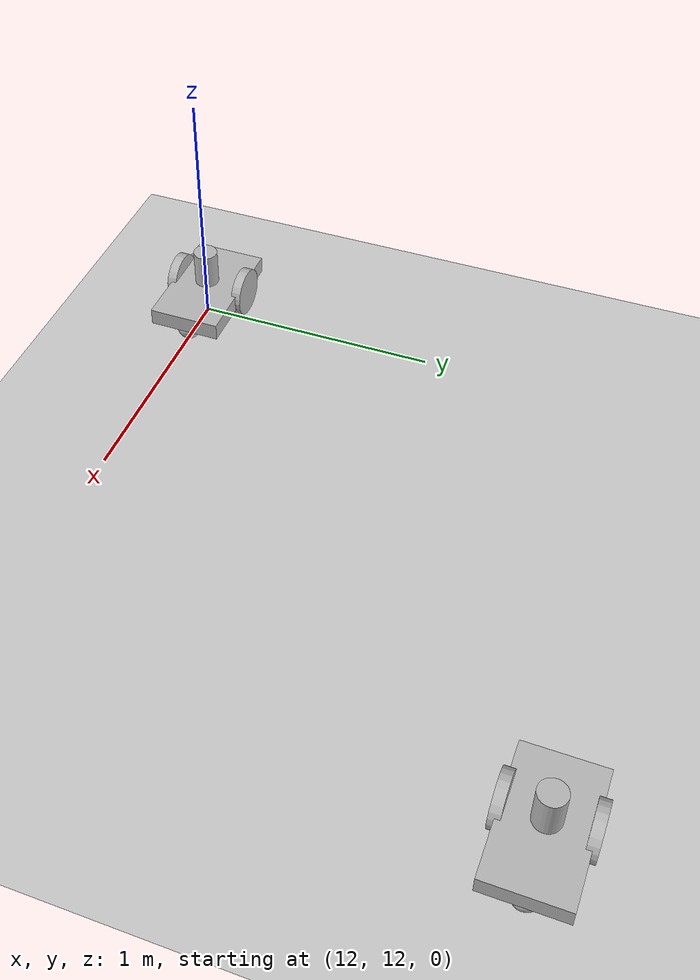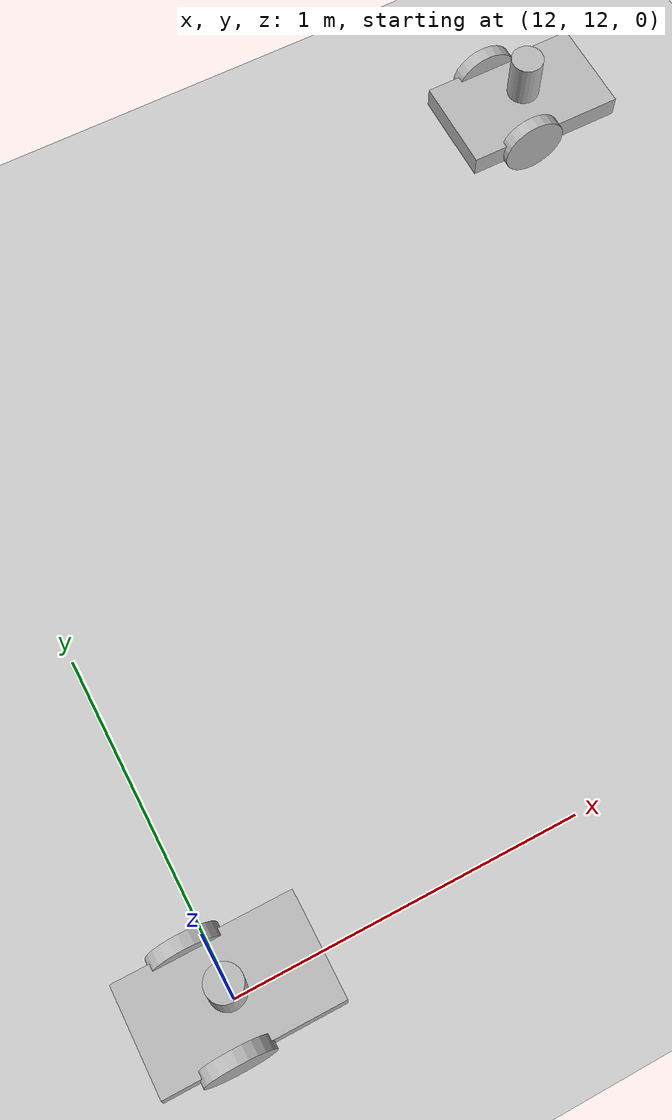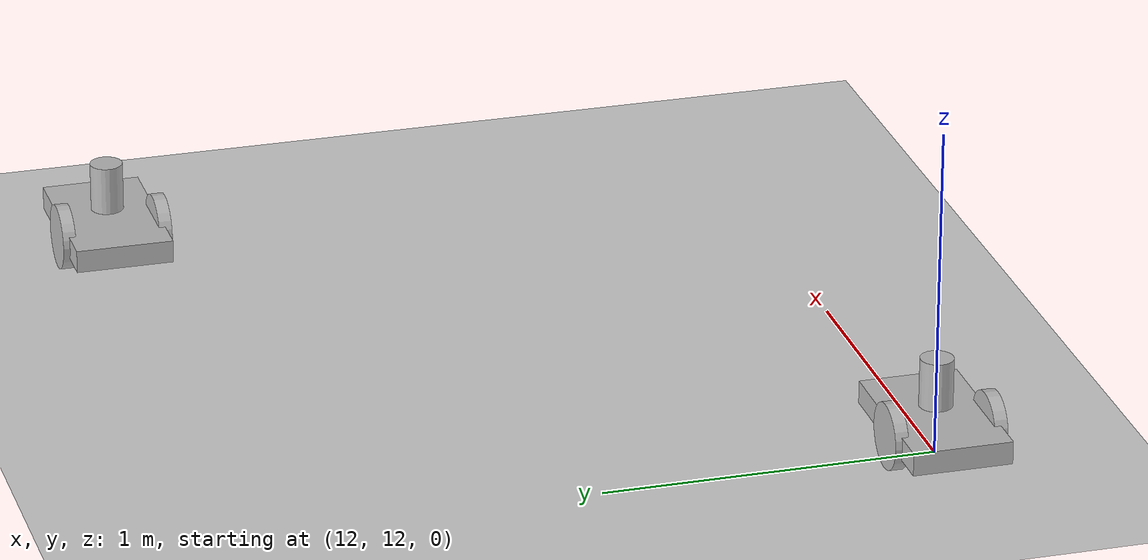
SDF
<sdf version="1.6">
 <world name="default">
  <model name="ground_plane">
   <static>1</static>
   <link name="link">
    <collision name="collision">
     <geometry><plane><normal>0 0 1</normal><size>100 100</size></plane></geometry>
     <surface>
      <contact><collide_bitmask>65535</collide_bitmask></contact>
      <friction><ode><mu>100</mu><mu2>50</mu2></ode></friction>
     </surface>
    </collision>
    <visual name="visual">
     <cast_shadows>0</cast_shadows>
     <geometry><plane><normal>0 0 1</normal><size>100 100</size></plane></geometry>
     <material>
      <script><uri>file://media/materials/scripts/gazebo.material</uri><name>Gazebo/Grey</name></script>
     </material>
    </visual>
   </link>
  </model>
  <model name="robot_9">
   <link name="robot/link_chassis">
    <inertial>
     <pose>0 0 0.021667 0 -0 0</pose>
     <mass>6</mass>
     <inertia>
      <ixx>0.0931667</ixx>
      <ixy>0</ixy>
      <ixz>0</ixz>
      <iyy>0.2265</iyy>
      <iyz>0</iyz>
      <izz>0.212417</izz>
     </inertia>
    </inertial>
    <collision name="robot/link_chassis_fixed_joint_lump__robot/collision_chassis_collision">
     <geometry><box><size>0.5 0.3 0.07</size></box></geometry>
    </collision>
    <collision name="robot/link_chassis_fixed_joint_lump__robot/caster_front_collision_collision_1">
     <pose>0.35 0 -0.05 0 -0 0</pose>
     <geometry><sphere><radius>0.05</radius></sphere></geometry>
    </collision>
    <collision name="robot/link_chassis_fixed_joint_lump__robot/sensor_laser_collision_2">
     <pose>0 0 0.13 0 -0 0</pose>
     <geometry><cylinder><length>0.15</length><radius>0.05</radius></cylinder></geometry>
    </collision>
    <visual name="robot/link_chassis_visual"><geometry><box><size>0.5 0.3 0.07</size></box></geometry></visual>
    <visual name="robot/link_chassis_fixed_joint_lump__robot/caster_front_visual_visual_1">
     <pose>0.2 0 -0.05 0 -0 0</pose>
     <geometry><sphere><radius>0.05</radius></sphere></geometry>
    </visual>
    <visual name="robot/link_chassis_fixed_joint_lump__robot/sensor_laser_visual_2">
     <pose>0 0 0.13 0 -0 0</pose>
     <geometry><cylinder><length>0.15</length><radius>0.05</radius></cylinder></geometry>
     <material><script><uri>__default__</uri><name>__default__</name></script></material>
    </visual>
    <sensor name="head_hokuyo_sensor" type="ray">
     <visualize>0</visualize>
     <update_rate>20</update_rate>
     <ray>
      <scan>
       <horizontal>
        <samples>720</samples>
        <resolution>1</resolution>
        <min_angle>-1.5707</min_angle>
        <max_angle>1.5707</max_angle>
       </horizontal>
       <vertical><samples>1</samples><min_angle>0</min_angle><max_angle>0</max_angle></vertical>
      </scan>
      <range><min>0.2</min><max>2</max><resolution>0.01</resolution></range>
      <noise><type>gaussian</type><mean>0</mean><stddev>0.01</stddev></noise>
     </ray>
     <plugin name="gazebo_ros_head_hokuyo_controller" filename="libgazebo_ros_laser.so">
      <topicName>laser_scan</topicName>
      <frameName>sensor_laser</frameName>
      <robotNamespace>/robot_9/</robotNamespace>
     </plugin>
     <pose>0 0 0.13 0 -0 0</pose>
    </sensor>
   </link>
   <link name="robot/link_left_wheel">
    <pose>-0.05 -0.15 0 0 -0 0</pose>
    <inertial>
     <pose>0 0 0 -0 1.5707 1.5707</pose>
     <mass>0.2</mass>
     <inertia>
      <ixx>0.000526667</ixx>
      <ixy>0</ixy>
      <ixz>0</ixz>
      <iyy>0.000526667</iyy>
      <iyz>0</iyz>
      <izz>0.001</izz>
     </inertia>
    </inertial>
    <collision name="robot/link_left_wheel_collision_collision">
     <pose>0 0 0 3.14159 1.57079 -1.57089</pose>
     <geometry><cylinder><length>0.04</length><radius>0.1</radius></cylinder></geometry>
    </collision>
    <visual name="robot/link_left_wheel_visual_visual">
     <pose>0 0 0 3.14159 1.57079 -1.57089</pose>
     <geometry><cylinder><length>0.04</length><radius>0.1</radius></cylinder></geometry>
    </visual>
   </link>
   <joint name="robot/joint_left_wheel" type="revolute">
    <child>robot/link_left_wheel</child>
    <parent>robot/link_chassis</parent>
    <axis>
     <xyz>0 1 0</xyz>
     <limit><lower>-1e+16</lower><upper>1e+16</upper></limit>
     <dynamics><spring_reference>0</spring_reference><spring_stiffness>0</spring_stiffness></dynamics>
     <use_parent_model_frame>1</use_parent_model_frame>
    </axis>
   </joint>
   <link name="robot/link_right_wheel">
    <pose>-0.05 0.15 0 0 -0 0</pose>
    <inertial>
     <pose>0 0 0 -0 1.5707 1.5707</pose>
     <mass>0.2</mass>
     <inertia>
      <ixx>0.000526667</ixx>
      <ixy>0</ixy>
      <ixz>0</ixz>
      <iyy>0.000526667</iyy>
      <iyz>0</iyz>
      <izz>0.001</izz>
     </inertia>
    </inertial>
    <collision name="robot/link_right_wheel_collision_collision">
     <pose>0 0 0 3.14159 1.57079 -1.57089</pose>
     <geometry><cylinder><length>0.04</length><radius>0.1</radius></cylinder></geometry>
    </collision>
    <visual name="robot/link_right_wheel_visual_visual">
     <pose>0 0 0 3.14159 1.57079 -1.57089</pose>
     <geometry><cylinder><length>0.04</length><radius>0.1</radius></cylinder></geometry>
    </visual>
   </link>
   <joint name="robot/joint_right_wheel" type="revolute">
    <child>robot/link_right_wheel</child>
    <parent>robot/link_chassis</parent>
    <axis>
     <xyz>0 1 0</xyz>
     <limit><lower>-1e+16</lower><upper>1e+16</upper></limit>
     <dynamics><spring_reference>0</spring_reference><spring_stiffness>0</spring_stiffness></dynamics>
     <use_parent_model_frame>1</use_parent_model_frame>
    </axis>
   </joint>
   <plugin name="gazebo_ros_control" filename="libgazebo_ros_control.so">
    <robotSimType>gazebo_ros_control/DefaultRobotHWSim</robotSimType>
    <legacyModeNS>1</legacyModeNS>
    <robotNamespace>/robot_9/</robotNamespace>
   </plugin>
   <static>0</static>
   <plugin name="differential_drive_controller" filename="libgazebo_ros_diff_drive.so">
    <legacyMode>0</legacyMode>
    <alwaysOn>1</alwaysOn>
    <updateRate>20</updateRate>
    <leftJoint>robot/joint_left_wheel</leftJoint>
    <rightJoint>robot/joint_right_wheel</rightJoint>
    <wheelSeparation>0.2</wheelSeparation>
    <wheelDiameter>0.2</wheelDiameter>
    <torque>0.1</torque>
    <commandTopic>cmd_vel</commandTopic>
    <odometryTopic>odom</odometryTopic>
    <odometryFrame>odom</odometryFrame>
    <robotBaseFrame>link_chassis</robotBaseFrame>
    <robotNamespace>/robot_9/</robotNamespace>
   </plugin>
   <pose>13.9945 14.0023 0.099999 0 6e-06 -0.00293</pose>
  </model>
  <model name="robot_4">
   <link name="robot/link_chassis">
    <inertial>
     <pose>0 0 0.021667 0 -0 0</pose>
     <mass>6</mass>
     <inertia>
      <ixx>0.0931667</ixx>
      <ixy>0</ixy>
      <ixz>0</ixz>
      <iyy>0.2265</iyy>
      <iyz>0</iyz>
      <izz>0.212417</izz>
     </inertia>
    </inertial>
    <collision name="robot/link_chassis_fixed_joint_lump__robot/collision_chassis_collision">
     <geometry><box><size>0.5 0.3 0.07</size></box></geometry>
    </collision>
    <collision name="robot/link_chassis_fixed_joint_lump__robot/caster_front_collision_collision_1">
     <pose>0.35 0 -0.05 0 -0 0</pose>
     <geometry><sphere><radius>0.05</radius></sphere></geometry>
    </collision>
    <collision name="robot/link_chassis_fixed_joint_lump__robot/sensor_laser_collision_2">
     <pose>0 0 0.13 0 -0 0</pose>
     <geometry><cylinder><length>0.15</length><radius>0.05</radius></cylinder></geometry>
    </collision>
    <visual name="robot/link_chassis_visual"><geometry><box><size>0.5 0.3 0.07</size></box></geometry></visual>
    <visual name="robot/link_chassis_fixed_joint_lump__robot/caster_front_visual_visual_1">
     <pose>0.2 0 -0.05 0 -0 0</pose>
     <geometry><sphere><radius>0.05</radius></sphere></geometry>
    </visual>
    <visual name="robot/link_chassis_fixed_joint_lump__robot/sensor_laser_visual_2">
     <pose>0 0 0.13 0 -0 0</pose>
     <geometry><cylinder><length>0.15</length><radius>0.05</radius></cylinder></geometry>
     <material><script><uri>__default__</uri><name>__default__</name></script></material>
    </visual>
    <sensor name="head_hokuyo_sensor" type="ray">
     <visualize>0</visualize>
     <update_rate>20</update_rate>
     <ray>
      <scan>
       <horizontal>
        <samples>720</samples>
        <resolution>1</resolution>
        <min_angle>-1.5707</min_angle>
        <max_angle>1.5707</max_angle>
       </horizontal>
       <vertical><samples>1</samples><min_angle>0</min_angle><max_angle>0</max_angle></vertical>
      </scan>
      <range><min>0.2</min><max>2</max><resolution>0.01</resolution></range>
      <noise><type>gaussian</type><mean>0</mean><stddev>0.01</stddev></noise>
     </ray>
     <plugin name="gazebo_ros_head_hokuyo_controller" filename="libgazebo_ros_laser.so">
      <topicName>laser_scan</topicName>
      <frameName>sensor_laser</frameName>
      <robotNamespace>/robot_4/</robotNamespace>
     </plugin>
     <pose>0 0 0.13 0 -0 0</pose>
    </sensor>
   </link>
   <link name="robot/link_left_wheel">
    <pose>-0.05 -0.15 0 0 -0 0</pose>
    <inertial>
     <pose>0 0 0 -0 1.5707 1.5707</pose>
     <mass>0.2</mass>
     <inertia>
      <ixx>0.000526667</ixx>
      <ixy>0</ixy>
      <ixz>0</ixz>
      <iyy>0.000526667</iyy>
      <iyz>0</iyz>
      <izz>0.001</izz>
     </inertia>
    </inertial>
    <collision name="robot/link_left_wheel_collision_collision">
     <pose>0 0 0 3.14159 1.57079 -1.57089</pose>
     <geometry><cylinder><length>0.04</length><radius>0.1</radius></cylinder></geometry>
    </collision>
    <visual name="robot/link_left_wheel_visual_visual">
     <pose>0 0 0 3.14159 1.57079 -1.57089</pose>
     <geometry><cylinder><length>0.04</length><radius>0.1</radius></cylinder></geometry>
    </visual>
   </link>
   <joint name="robot/joint_left_wheel" type="revolute">
    <child>robot/link_left_wheel</child>
    <parent>robot/link_chassis</parent>
    <axis>
     <xyz>0 1 0</xyz>
     <limit><lower>-1e+16</lower><upper>1e+16</upper></limit>
     <dynamics><spring_reference>0</spring_reference><spring_stiffness>0</spring_stiffness></dynamics>
     <use_parent_model_frame>1</use_parent_model_frame>
    </axis>
   </joint>
   <link name="robot/link_right_wheel">
    <pose>-0.05 0.15 0 0 -0 0</pose>
    <inertial>
     <pose>0 0 0 -0 1.5707 1.5707</pose>
     <mass>0.2</mass>
     <inertia>
      <ixx>0.000526667</ixx>
      <ixy>0</ixy>
      <ixz>0</ixz>
      <iyy>0.000526667</iyy>
      <iyz>0</iyz>
      <izz>0.001</izz>
     </inertia>
    </inertial>
    <collision name="robot/link_right_wheel_collision_collision">
     <pose>0 0 0 3.14159 1.57079 -1.57089</pose>
     <geometry><cylinder><length>0.04</length><radius>0.1</radius></cylinder></geometry>
    </collision>
    <visual name="robot/link_right_wheel_visual_visual">
     <pose>0 0 0 3.14159 1.57079 -1.57089</pose>
     <geometry><cylinder><length>0.04</length><radius>0.1</radius></cylinder></geometry>
    </visual>
   </link>
   <joint name="robot/joint_right_wheel" type="revolute">
    <child>robot/link_right_wheel</child>
    <parent>robot/link_chassis</parent>
    <axis>
     <xyz>0 1 0</xyz>
     <limit><lower>-1e+16</lower><upper>1e+16</upper></limit>
     <dynamics><spring_reference>0</spring_reference><spring_stiffness>0</spring_stiffness></dynamics>
     <use_parent_model_frame>1</use_parent_model_frame>
    </axis>
   </joint>
   <plugin name="gazebo_ros_control" filename="libgazebo_ros_control.so">
    <robotSimType>gazebo_ros_control/DefaultRobotHWSim</robotSimType>
    <legacyModeNS>1</legacyModeNS>
    <robotNamespace>/robot_4/</robotNamespace>
   </plugin>
   <static>0</static>
   <plugin name="differential_drive_controller" filename="libgazebo_ros_diff_drive.so">
    <legacyMode>0</legacyMode>
    <alwaysOn>1</alwaysOn>
    <updateRate>20</updateRate>
    <leftJoint>robot/joint_left_wheel</leftJoint>
    <rightJoint>robot/joint_right_wheel</rightJoint>
    <wheelSeparation>0.2</wheelSeparation>
    <wheelDiameter>0.2</wheelDiameter>
    <torque>0.1</torque>
    <commandTopic>cmd_vel</commandTopic>
    <odometryTopic>odom</odometryTopic>
    <odometryFrame>odom</odometryFrame>
    <robotBaseFrame>link_chassis</robotBaseFrame>
    <robotNamespace>/robot_4/</robotNamespace>
   </plugin>
   <pose>11.9947 12.0023 0.1 0 0 -0.002933</pose>
  </model>
 </world>
</sdf>
